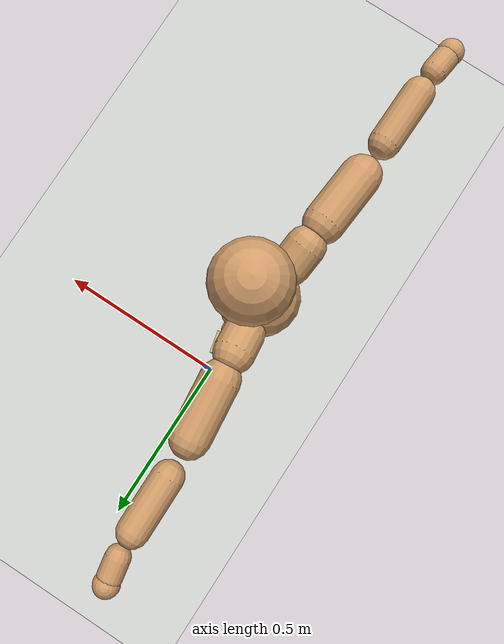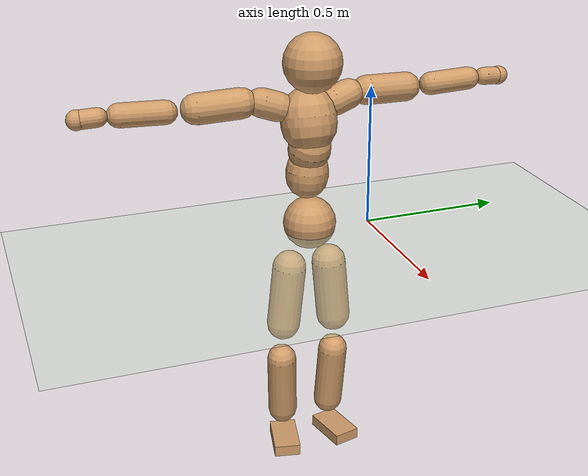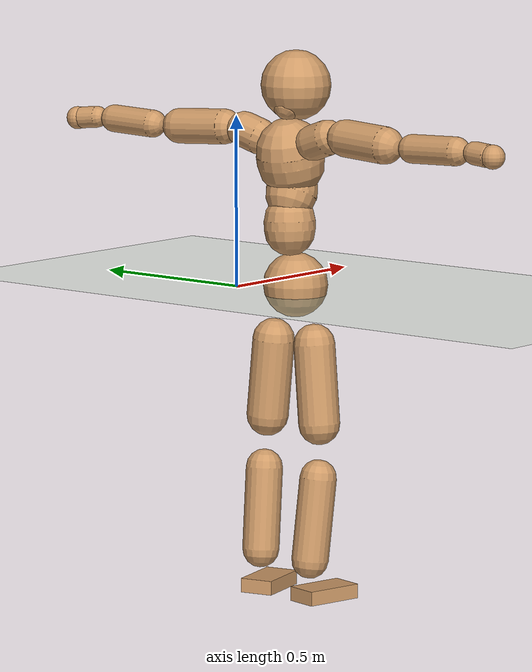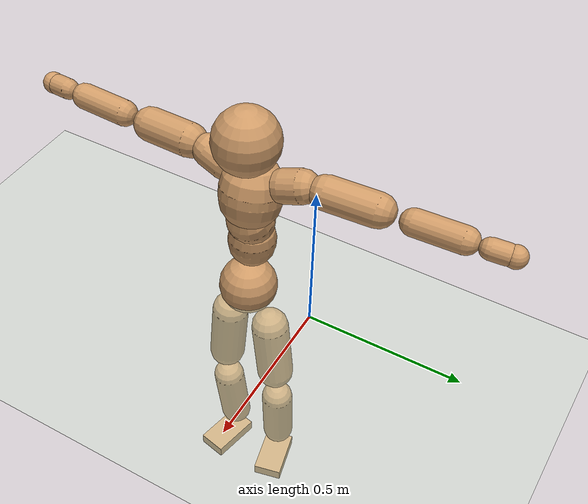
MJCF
<mujoco model="humanoid">
  <compiler coordinate="local"/>
  <default>
    <joint damping="0.0" armature="0.01" stiffness="0.0" limited="true"/>
    <geom conaffinity="1" condim="3" contype="7" margin="0.001" rgba="0.8 0.6 .4 1"/>
  </default>
  <asset>
    <texture type="skybox" builtin="gradient" rgb1=".4 .5 .6" rgb2="0 0 0" width="100" height="100"/>
    <texture builtin="flat" height="1278" mark="cross" markrgb="1 1 1" name="texgeom" random="0.01" rgb1="0.8 0.6 0.4" rgb2="0.8 0.6 0.4" type="cube" width="127"/>
    <texture builtin="checker" height="100" name="texplane" rgb1="0 0 0" rgb2="0.8 0.8 0.8" type="2d" width="100"/>
    <material name="MatPlane" reflectance="0.5" shininess="1" specular="1" texrepeat="60 60" texture="texplane"/>
    <material name="geom" texture="texgeom" texuniform="true"/>
  </asset>
  <worldbody>
    <light cutoff="100" diffuse="1 1 1" dir="-0 0 -1.3" directional="true" exponent="1" pos="0 0 1.3" specular=".1 .1 .1"/>
    <geom conaffinity="1" condim="3" name="floor" pos="0 0 0" rgba="0.8 0.9 0.8 1" size="100 100 .2" type="plane" material="MatPlane"/>
    <body name="Pelvis" pos="-0.0018 -0.2228 0.0275">
      <freejoint name="Pelvis"/>
      <geom type="sphere" contype="1" conaffinity="1" density="500" size="0.0936" pos="0.0000 0.0000 0.0000" name="Pelvis"/>
      <body name="L_Hip" pos="-0.0064 0.069 -0.0908">
        <joint name="L_Hip_x" type="hinge" pos="0 0 0" axis="1 0 0" stiffness="800" damping="80" armature="0.02" range="-180.0000 180.0000"/>
        <joint name="L_Hip_y" type="hinge" pos="0 0 0" axis="0 1 0" stiffness="800" damping="80" armature="0.02" range="-180.0000 180.0000"/>
        <joint name="L_Hip_z" type="hinge" pos="0 0 0" axis="0 0 1" stiffness="800" damping="80" armature="0.02" range="-180.0000 180.0000"/>
        <geom type="capsule" contype="1" conaffinity="1" density="500" fromto="-0.0009 0.0069 -0.0750 -0.0035 0.0278 -0.2999" size="0.0611" name="L_Hip"/>
        <body name="L_Knee" pos="-0.0044 0.0347 -0.3749">
          <joint name="L_Knee_x" type="hinge" pos="0 0 0" axis="1 0 0" stiffness="800" damping="80" armature="0.02" range="-180.0000 180.0000"/>
          <joint name="L_Knee_y" type="hinge" pos="0 0 0" axis="0 1 0" stiffness="800" damping="80" armature="0.02" range="-180.0000 180.0000"/>
          <joint name="L_Knee_z" type="hinge" pos="0 0 0" axis="0 0 1" stiffness="800" damping="80" armature="0.02" range="-180.0000 180.0000"/>
          <geom type="capsule" contype="1" conaffinity="1" density="500" fromto="-0.0086 -0.0027 -0.0793 -0.0345 -0.0108 -0.3171" size="0.0537" name="L_Knee"/>
          <body name="L_Ankle" pos="-0.0431 -0.0135 -0.3964">
            <joint name="L_Ankle_x" type="hinge" pos="0 0 0" axis="1 0 0" stiffness="800" damping="80" armature="0.02" range="-180.0000 180.0000"/>
            <joint name="L_Ankle_y" type="hinge" pos="0 0 0" axis="0 1 0" stiffness="800" damping="80" armature="0.02" range="-180.0000 180.0000"/>
            <joint name="L_Ankle_z" type="hinge" pos="0 0 0" axis="0 0 1" stiffness="800" damping="80" armature="0.02" range="-180.0000 180.0000"/>
            <geom type="box" contype="1" conaffinity="1" density="500" pos="0.0594 0.0138 -0.0278" size="0.0845 0.0489 0.0206" quat="0.9935 0.0000 0.0000 0.1142" name="L_Ankle"/>
            <body name="L_Toe" pos="0.1188 0.0277 -0.0557">
              <joint name="L_Toe_x" type="hinge" pos="0 0 0" axis="1 0 0" stiffness="500" damping="50" armature="0.02" range="-180.0000 180.0000"/>
              <joint name="L_Toe_y" type="hinge" pos="0 0 0" axis="0 1 0" stiffness="500" damping="50" armature="0.02" range="-180.0000 180.0000"/>
              <joint name="L_Toe_z" type="hinge" pos="0 0 0" axis="0 0 1" stiffness="500" damping="50" armature="0.02" range="-180.0000 180.0000"/>
              <geom type="box" contype="1" conaffinity="1" density="500" pos="0.0000 0.0000 0.0272" size="0.001 0.0024 0.001" quat="0.9928 0.0000 0.0000 0.1201" name="L_Toe"/>
            </body>
          </body>
        </body>
      </body>
      <body name="R_Hip" pos="-0.0042 -0.0672 -0.0899">
        <joint name="R_Hip_x" type="hinge" pos="0 0 0" axis="1 0 0" stiffness="800" damping="80" armature="0.02" range="-180.0000 180.0000"/>
        <joint name="R_Hip_y" type="hinge" pos="0 0 0" axis="0 1 0" stiffness="800" damping="80" armature="0.02" range="-180.0000 180.0000"/>
        <joint name="R_Hip_z" type="hinge" pos="0 0 0" axis="0 0 1" stiffness="800" damping="80" armature="0.02" range="-180.0000 180.0000"/>
        <geom type="capsule" contype="1" conaffinity="1" density="500" fromto="-0.0018 -0.0077 -0.0763 -0.0071 -0.0308 -0.3053" size="0.0601" name="R_Hip"/>
        <body name="R_Knee" pos="-0.0089 -0.0385 -0.3817">
          <joint name="R_Knee_x" type="hinge" pos="0 0 0" axis="1 0 0" stiffness="800" damping="80" armature="0.02" range="-180.0000 180.0000"/>
          <joint name="R_Knee_y" type="hinge" pos="0 0 0" axis="0 1 0" stiffness="800" damping="80" armature="0.02" range="-180.0000 180.0000"/>
          <joint name="R_Knee_z" type="hinge" pos="0 0 0" axis="0 0 1" stiffness="800" damping="80" armature="0.02" range="-180.0000 180.0000"/>
          <geom type="capsule" contype="1" conaffinity="1" density="500" fromto="-0.0084 0.0031 -0.0794 -0.0334 0.0125 -0.3175" size="0.0538" name="R_Knee"/>
          <body name="R_Ankle" pos="-0.0418 0.0156 -0.3969">
            <joint name="R_Ankle_x" type="hinge" pos="0 0 0" axis="1 0 0" stiffness="800" damping="80" armature="0.02" range="-180.0000 180.0000"/>
            <joint name="R_Ankle_y" type="hinge" pos="0 0 0" axis="0 1 0" stiffness="800" damping="80" armature="0.02" range="-180.0000 180.0000"/>
            <joint name="R_Ankle_z" type="hinge" pos="0 0 0" axis="0 0 1" stiffness="800" damping="80" armature="0.02" range="-180.0000 180.0000"/>
            <geom type="box" contype="1" conaffinity="1" density="500" pos="0.0615 -0.0129 -0.0241" size="0.0863 0.0483 0.0208" quat="0.9947 0.0000 0.0000 -0.1029" name="R_Ankle"/>
            <body name="R_Toe" pos="0.1229 -0.0257 -0.0483">
              <joint name="R_Toe_x" type="hinge" pos="0 0 0" axis="1 0 0" stiffness="500" damping="50" armature="0.02" range="-180.0000 180.0000"/>
              <joint name="R_Toe_y" type="hinge" pos="0 0 0" axis="0 1 0" stiffness="500" damping="50" armature="0.02" range="-180.0000 180.0000"/>
              <joint name="R_Toe_z" type="hinge" pos="0 0 0" axis="0 0 1" stiffness="500" damping="50" armature="0.02" range="-180.0000 180.0000"/>
              <geom type="box" contype="1" conaffinity="1" density="500" pos="0.0000 0.0000 0.0249" size="0.001 0.0024 0.0011" quat="0.9956 0.0000 0.0000 -0.0937" name="R_Toe"/>
            </body>
          </body>
        </body>
      </body>
      <body name="Torso" pos="-0.0268 -0.0025 0.1085">
        <joint name="Torso_x" type="hinge" pos="0 0 0" axis="1 0 0" stiffness="1000" damping="100" armature="0.02" range="-180.0000 180.0000"/>
        <joint name="Torso_y" type="hinge" pos="0 0 0" axis="0 1 0" stiffness="1000" damping="100" armature="0.02" range="-180.0000 180.0000"/>
        <joint name="Torso_z" type="hinge" pos="0 0 0" axis="0 0 1" stiffness="1000" damping="100" armature="0.02" range="-180.0000 180.0000"/>
        <geom type="capsule" contype="1" conaffinity="1" density="500" fromto="0.0012 0.0034 0.0806 0.0008 0.0023 0.0537" size="0.0748" name="Torso"/>
        <body name="Spine" pos="0.0019 0.0057 0.1343">
          <joint name="Spine_x" type="hinge" pos="0 0 0" axis="1 0 0" stiffness="1000" damping="100" armature="0.02" range="-180.0000 180.0000"/>
          <joint name="Spine_y" type="hinge" pos="0 0 0" axis="0 1 0" stiffness="1000" damping="100" armature="0.02" range="-180.0000 180.0000"/>
          <joint name="Spine_z" type="hinge" pos="0 0 0" axis="0 0 1" stiffness="1000" damping="100" armature="0.02" range="-180.0000 180.0000"/>
          <geom type="capsule" contype="1" conaffinity="1" density="500" fromto="0.0148 0.0008 0.0318 0.0099 0.0005 0.0212" size="0.0746" name="Spine"/>
          <body name="Chest" pos="0.0247 0.0013 0.053">
            <joint name="Chest_x" type="hinge" pos="0 0 0" axis="1 0 0" stiffness="1000" damping="100" armature="0.02" range="-180.0000 180.0000"/>
            <joint name="Chest_y" type="hinge" pos="0 0 0" axis="0 1 0" stiffness="1000" damping="100" armature="0.02" range="-180.0000 180.0000"/>
            <joint name="Chest_z" type="hinge" pos="0 0 0" axis="0 0 1" stiffness="1000" damping="100" armature="0.02" range="-180.0000 180.0000"/>
            <geom type="capsule" contype="1" conaffinity="1" density="500" fromto="-0.0226 -0.0012 0.0908 -0.0151 -0.0008 0.0605" size="0.0978" name="Chest"/>
            <body name="Neck" pos="-0.0414 -0.0029 0.2136">
              <joint name="Neck_x" type="hinge" pos="0 0 0" axis="1 0 0" stiffness="500" damping="50" armature="0.02" range="-180.0000 180.0000"/>
              <joint name="Neck_y" type="hinge" pos="0 0 0" axis="0 1 0" stiffness="500" damping="50" armature="0.02" range="-180.0000 180.0000"/>
              <joint name="Neck_z" type="hinge" pos="0 0 0" axis="0 0 1" stiffness="500" damping="50" armature="0.02" range="-180.0000 180.0000"/>
              <geom type="capsule" contype="1" conaffinity="1" density="500" fromto="0.0103 0.0011 0.0131 0.0411 0.0042 0.0524" size="0.0438" name="Neck"/>
              <body name="Head" pos="0.0514 0.0053 0.0656">
                <joint name="Head_x" type="hinge" pos="0 0 0" axis="1 0 0" stiffness="500" damping="50" armature="0.02" range="-180.0000 180.0000"/>
                <joint name="Head_y" type="hinge" pos="0 0 0" axis="0 1 0" stiffness="500" damping="50" armature="0.02" range="-180.0000 180.0000"/>
                <joint name="Head_z" type="hinge" pos="0 0 0" axis="0 0 1" stiffness="500" damping="50" armature="0.02" range="-180.0000 180.0000"/>
                <geom type="sphere" contype="1" conaffinity="1" density="500" size="0.1012" pos="0.0000 0.0000 0.0000" name="Head"/>
              </body>
            </body>
            <body name="L_Thorax" pos="-0.0335 0.079 0.1215">
              <joint name="L_Thorax_x" type="hinge" pos="0 0 0" axis="1 0 0" stiffness="500" damping="50" armature="0.02" range="-180.0000 180.0000"/>
              <joint name="L_Thorax_y" type="hinge" pos="0 0 0" axis="0 1 0" stiffness="500" damping="50" armature="0.02" range="-180.0000 180.0000"/>
              <joint name="L_Thorax_z" type="hinge" pos="0 0 0" axis="0 0 1" stiffness="500" damping="50" armature="0.02" range="-180.0000 180.0000"/>
              <geom type="capsule" contype="1" conaffinity="1" density="500" fromto="-0.0018 0.0183 0.0060 -0.0074 0.0730 0.0240" size="0.0521" name="L_Thorax"/>
              <body name="L_Shoulder" pos="-0.0092 0.0913 0.0301">
                <joint name="L_Shoulder_x" type="hinge" pos="0 0 0" axis="1 0 0" stiffness="500" damping="50" armature="0.02" range="-720.0000 720.0000"/>
                <joint name="L_Shoulder_y" type="hinge" pos="0 0 0" axis="0 1 0" stiffness="500" damping="50" armature="0.02" range="-720.0000 720.0000"/>
                <joint name="L_Shoulder_z" type="hinge" pos="0 0 0" axis="0 0 1" stiffness="500" damping="50" armature="0.02" range="-720.0000 720.0000"/>
                <geom type="capsule" contype="1" conaffinity="1" density="500" fromto="-0.0054 0.0517 -0.0025 -0.0215 0.2067 -0.0099" size="0.0516" name="L_Shoulder"/>
                <body name="L_Elbow" pos="-0.0269 0.2584 -0.0124">
                  <joint name="L_Elbow_x" type="hinge" pos="0 0 0" axis="1 0 0" stiffness="500" damping="50" armature="0.02" range="-720.0000 720.0000"/>
                  <joint name="L_Elbow_y" type="hinge" pos="0 0 0" axis="0 1 0" stiffness="500" damping="50" armature="0.02" range="-720.0000 720.0000"/>
                  <joint name="L_Elbow_z" type="hinge" pos="0 0 0" axis="0 0 1" stiffness="500" damping="50" armature="0.02" range="-720.0000 720.0000"/>
                  <geom type="capsule" contype="1" conaffinity="1" density="500" fromto="-0.0003 0.0495 0.0018 -0.0012 0.1981 0.0070" size="0.0405" name="L_Elbow"/>
                  <body name="L_Wrist" pos="-0.0015 0.2477 0.0088">
                    <joint name="L_Wrist_x" type="hinge" pos="0 0 0" axis="1 0 0" stiffness="300" damping="30" armature="0.02" range="-180.0000 180.0000"/>
                    <joint name="L_Wrist_y" type="hinge" pos="0 0 0" axis="0 1 0" stiffness="300" damping="30" armature="0.02" range="-180.0000 180.0000"/>
                    <joint name="L_Wrist_z" type="hinge" pos="0 0 0" axis="0 0 1" stiffness="300" damping="30" armature="0.02" range="-180.0000 180.0000"/>
                    <geom type="capsule" contype="1" conaffinity="1" density="500" fromto="-0.0030 0.0168 -0.0016 -0.0120 0.0670 -0.0063" size="0.0317" name="L_Wrist"/>
                    <body name="L_Hand" pos="-0.015 0.0838 -0.0079">
                      <joint name="L_Hand_x" type="hinge" pos="0 0 0" axis="1 0 0" stiffness="300" damping="30" armature="0.02" range="-180.0000 180.0000"/>
                      <joint name="L_Hand_y" type="hinge" pos="0 0 0" axis="0 1 0" stiffness="300" damping="30" armature="0.02" range="-180.0000 180.0000"/>
                      <joint name="L_Hand_z" type="hinge" pos="0 0 0" axis="0 0 1" stiffness="300" damping="30" armature="0.02" range="-180.0000 180.0000"/>
                      <geom type="sphere" contype="1" conaffinity="1" density="500" size="0.0335" pos="0.0000 0.0000 0.0000" name="L_Hand"/>
                    </body>
                  </body>
                </body>
              </body>
            </body>
            <body name="R_Thorax" pos="-0.038 -0.0822 0.1186">
              <joint name="R_Thorax_x" type="hinge" pos="0 0 0" axis="1 0 0" stiffness="500" damping="50" armature="0.02" range="-180.0000 180.0000"/>
              <joint name="R_Thorax_y" type="hinge" pos="0 0 0" axis="0 1 0" stiffness="500" damping="50" armature="0.02" range="-180.0000 180.0000"/>
              <joint name="R_Thorax_z" type="hinge" pos="0 0 0" axis="0 0 1" stiffness="500" damping="50" armature="0.02" range="-180.0000 180.0000"/>
              <geom type="capsule" contype="1" conaffinity="1" density="500" fromto="-0.0018 -0.0193 0.0065 -0.0073 -0.0772 0.0260" size="0.0512" name="R_Thorax"/>
              <body name="R_Shoulder" pos="-0.0091 -0.0964 0.0325">
                <joint name="R_Shoulder_x" type="hinge" pos="0 0 0" axis="1 0 0" stiffness="500" damping="50" armature="0.02" range="-720.0000 720.0000"/>
                <joint name="R_Shoulder_y" type="hinge" pos="0 0 0" axis="0 1 0" stiffness="500" damping="50" armature="0.02" range="-720.0000 720.0000"/>
                <joint name="R_Shoulder_z" type="hinge" pos="0 0 0" axis="0 0 1" stiffness="500" damping="50" armature="0.02" range="-720.0000 720.0000"/>
                <geom type="capsule" contype="1" conaffinity="1" density="500" fromto="-0.0042 -0.0505 -0.0027 -0.0169 -0.2019 -0.0107" size="0.0531" name="R_Shoulder"/>
                <body name="R_Elbow" pos="-0.0211 -0.2524 -0.0134">
                  <joint name="R_Elbow_x" type="hinge" pos="0 0 0" axis="1 0 0" stiffness="500" damping="50" armature="0.02" range="-720.0000 720.0000"/>
                  <joint name="R_Elbow_y" type="hinge" pos="0 0 0" axis="0 1 0" stiffness="500" damping="50" armature="0.02" range="-720.0000 720.0000"/>
                  <joint name="R_Elbow_z" type="hinge" pos="0 0 0" axis="0 0 1" stiffness="500" damping="50" armature="0.02" range="-720.0000 720.0000"/>
                  <geom type="capsule" contype="1" conaffinity="1" density="500" fromto="-0.0011 -0.0508 0.0016 -0.0045 -0.2032 0.0063" size="0.0409" name="R_Elbow"/>
                  <body name="R_Wrist" pos="-0.0056 -0.254 0.0079">
                    <joint name="R_Wrist_x" type="hinge" pos="0 0 0" axis="1 0 0" stiffness="300" damping="30" armature="0.02" range="-180.0000 180.0000"/>
                    <joint name="R_Wrist_y" type="hinge" pos="0 0 0" axis="0 1 0" stiffness="300" damping="30" armature="0.02" range="-180.0000 180.0000"/>
                    <joint name="R_Wrist_z" type="hinge" pos="0 0 0" axis="0 0 1" stiffness="300" damping="30" armature="0.02" range="-180.0000 180.0000"/>
                    <geom type="capsule" contype="1" conaffinity="1" density="500" fromto="-0.0020 -0.0169 -0.0012 -0.0082 -0.0675 -0.0047" size="0.0326" name="R_Wrist"/>
                    <body name="R_Hand" pos="-0.0102 -0.0844 -0.0059">
                      <joint name="R_Hand_x" type="hinge" pos="0 0 0" axis="1 0 0" stiffness="300" damping="30" armature="0.02" range="-180.0000 180.0000"/>
                      <joint name="R_Hand_y" type="hinge" pos="0 0 0" axis="0 1 0" stiffness="300" damping="30" armature="0.02" range="-180.0000 180.0000"/>
                      <joint name="R_Hand_z" type="hinge" pos="0 0 0" axis="0 0 1" stiffness="300" damping="30" armature="0.02" range="-180.0000 180.0000"/>
                      <geom type="sphere" contype="1" conaffinity="1" density="500" size="0.0339" pos="0.0000 0.0000 0.0000" name="R_Hand"/>
                    </body>
                  </body>
                </body>
              </body>
            </body>
          </body>
        </body>
      </body>
    </body>
  </worldbody>
  <actuator>
    <motor name="L_Hip_x" joint="L_Hip_x" gear="500"/>
    <motor name="L_Hip_y" joint="L_Hip_y" gear="500"/>
    <motor name="L_Hip_z" joint="L_Hip_z" gear="500"/>
    <motor name="L_Knee_x" joint="L_Knee_x" gear="500"/>
    <motor name="L_Knee_y" joint="L_Knee_y" gear="500"/>
    <motor name="L_Knee_z" joint="L_Knee_z" gear="500"/>
    <motor name="L_Ankle_x" joint="L_Ankle_x" gear="500"/>
    <motor name="L_Ankle_y" joint="L_Ankle_y" gear="500"/>
    <motor name="L_Ankle_z" joint="L_Ankle_z" gear="500"/>
    <motor name="L_Toe_x" joint="L_Toe_x" gear="500"/>
    <motor name="L_Toe_y" joint="L_Toe_y" gear="500"/>
    <motor name="L_Toe_z" joint="L_Toe_z" gear="500"/>
    <motor name="R_Hip_x" joint="R_Hip_x" gear="500"/>
    <motor name="R_Hip_y" joint="R_Hip_y" gear="500"/>
    <motor name="R_Hip_z" joint="R_Hip_z" gear="500"/>
    <motor name="R_Knee_x" joint="R_Knee_x" gear="500"/>
    <motor name="R_Knee_y" joint="R_Knee_y" gear="500"/>
    <motor name="R_Knee_z" joint="R_Knee_z" gear="500"/>
    <motor name="R_Ankle_x" joint="R_Ankle_x" gear="500"/>
    <motor name="R_Ankle_y" joint="R_Ankle_y" gear="500"/>
    <motor name="R_Ankle_z" joint="R_Ankle_z" gear="500"/>
    <motor name="R_Toe_x" joint="R_Toe_x" gear="500"/>
    <motor name="R_Toe_y" joint="R_Toe_y" gear="500"/>
    <motor name="R_Toe_z" joint="R_Toe_z" gear="500"/>
    <motor name="Torso_x" joint="Torso_x" gear="500"/>
    <motor name="Torso_y" joint="Torso_y" gear="500"/>
    <motor name="Torso_z" joint="Torso_z" gear="500"/>
    <motor name="Spine_x" joint="Spine_x" gear="500"/>
    <motor name="Spine_y" joint="Spine_y" gear="500"/>
    <motor name="Spine_z" joint="Spine_z" gear="500"/>
    <motor name="Chest_x" joint="Chest_x" gear="500"/>
    <motor name="Chest_y" joint="Chest_y" gear="500"/>
    <motor name="Chest_z" joint="Chest_z" gear="500"/>
    <motor name="Neck_x" joint="Neck_x" gear="500"/>
    <motor name="Neck_y" joint="Neck_y" gear="500"/>
    <motor name="Neck_z" joint="Neck_z" gear="500"/>
    <motor name="Head_x" joint="Head_x" gear="500"/>
    <motor name="Head_y" joint="Head_y" gear="500"/>
    <motor name="Head_z" joint="Head_z" gear="500"/>
    <motor name="L_Thorax_x" joint="L_Thorax_x" gear="500"/>
    <motor name="L_Thorax_y" joint="L_Thorax_y" gear="500"/>
    <motor name="L_Thorax_z" joint="L_Thorax_z" gear="500"/>
    <motor name="L_Shoulder_x" joint="L_Shoulder_x" gear="500"/>
    <motor name="L_Shoulder_y" joint="L_Shoulder_y" gear="500"/>
    <motor name="L_Shoulder_z" joint="L_Shoulder_z" gear="500"/>
    <motor name="L_Elbow_x" joint="L_Elbow_x" gear="500"/>
    <motor name="L_Elbow_y" joint="L_Elbow_y" gear="500"/>
    <motor name="L_Elbow_z" joint="L_Elbow_z" gear="500"/>
    <motor name="L_Wrist_x" joint="L_Wrist_x" gear="500"/>
    <motor name="L_Wrist_y" joint="L_Wrist_y" gear="500"/>
    <motor name="L_Wrist_z" joint="L_Wrist_z" gear="500"/>
    <motor name="L_Hand_x" joint="L_Hand_x" gear="500"/>
    <motor name="L_Hand_y" joint="L_Hand_y" gear="500"/>
    <motor name="L_Hand_z" joint="L_Hand_z" gear="500"/>
    <motor name="R_Thorax_x" joint="R_Thorax_x" gear="500"/>
    <motor name="R_Thorax_y" joint="R_Thorax_y" gear="500"/>
    <motor name="R_Thorax_z" joint="R_Thorax_z" gear="500"/>
    <motor name="R_Shoulder_x" joint="R_Shoulder_x" gear="500"/>
    <motor name="R_Shoulder_y" joint="R_Shoulder_y" gear="500"/>
    <motor name="R_Shoulder_z" joint="R_Shoulder_z" gear="500"/>
    <motor name="R_Elbow_x" joint="R_Elbow_x" gear="500"/>
    <motor name="R_Elbow_y" joint="R_Elbow_y" gear="500"/>
    <motor name="R_Elbow_z" joint="R_Elbow_z" gear="500"/>
    <motor name="R_Wrist_x" joint="R_Wrist_x" gear="500"/>
    <motor name="R_Wrist_y" joint="R_Wrist_y" gear="500"/>
    <motor name="R_Wrist_z" joint="R_Wrist_z" gear="500"/>
    <motor name="R_Hand_x" joint="R_Hand_x" gear="500"/>
    <motor name="R_Hand_y" joint="R_Hand_y" gear="500"/>
    <motor name="R_Hand_z" joint="R_Hand_z" gear="500"/>
  </actuator>
  <contact>
    <exclude body1="Torso" body2="Chest"/>
    <exclude body1="Head" body2="Chest"/>
    <exclude body1="R_Knee" body2="R_Toe"/>
    <exclude body1="R_Knee" body2="L_Ankle"/>
    <exclude body1="R_Knee" body2="L_Toe"/>
    <exclude body1="L_Knee" body2="L_Toe"/>
    <exclude body1="L_Knee" body2="R_Ankle"/>
    <exclude body1="L_Knee" body2="R_Toe"/>
    <exclude body1="L_Shoulder" body2="Chest"/>
    <exclude body1="R_Shoulder" body2="Chest"/>
  </contact>
  <sensor/>
  <size njmax="700" nconmax="700"/>
</mujoco>
